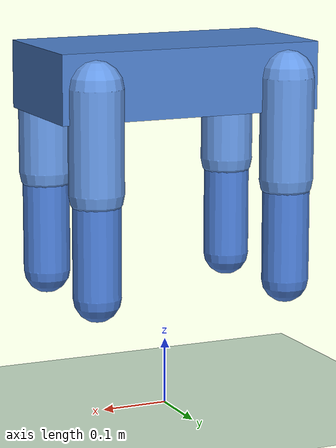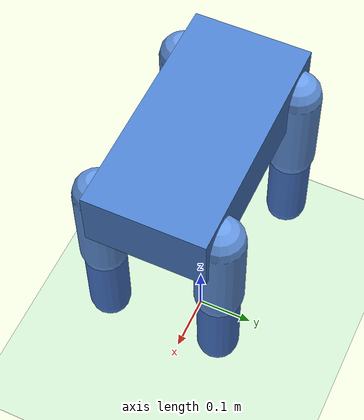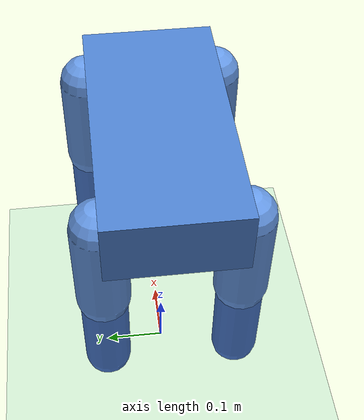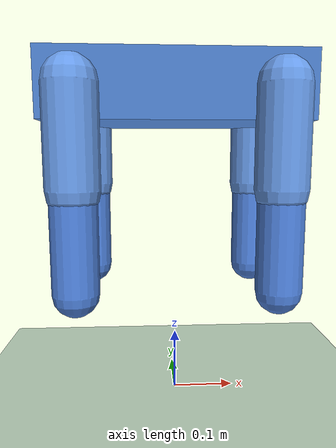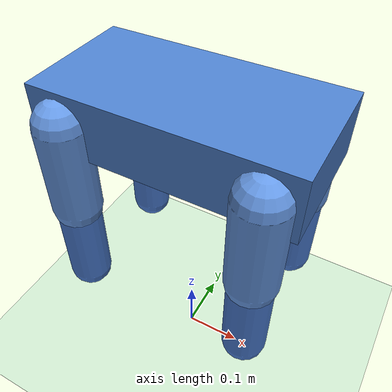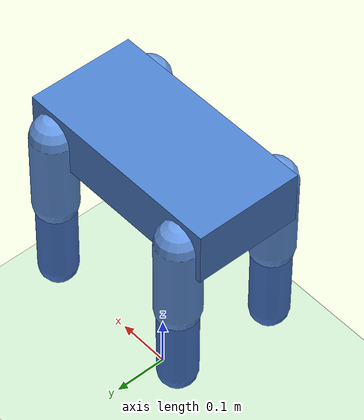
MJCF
<mujoco model="simple_quadruped">

  <!-- Derleyici ayarlari / Compiler settings -->
  <compiler angle="degree" coordinate="local" inertiafromgeom="true"/>
  <option integrator="RK4" timestep="0.01"/>

  <!-- Varsayilan eklem/geom ayarlari / Default joint/geom settings -->
  <default>
    <joint armature="1" damping="1" limited="true"/>
    <geom conaffinity="0" condim="3" density="5.0" friction="1.0 0.5 0.5"
          margin="0.01" rgba="0.2 0.6 0.8 1"/>
  </default>

  <!-- Gorseller / Visual assets -->
  <asset>
    <texture builtin="gradient" height="100" rgb1="0.6 0.8 1.0" rgb2="0.1 0.1 0.3"
             type="skybox" width="100"/>
    <texture builtin="checker" height="100" name="texplane"
             rgb1="0.1 0.2 0.3" rgb2="0.8 0.85 0.9" type="2d" width="100"/>
    <material name="MatPlane" reflectance="0.5" shininess="1"
              specular="1" texrepeat="60 60" texture="texplane"/>
  </asset>

  <worldbody>
    <!-- Isik ve zemin / Light and ground -->
    <light cutoff="100" diffuse="1 1 1" dir="0 0 -1.3"
           directional="true" pos="0 0 1.3" specular=".1 .1 .1"/>
    <geom conaffinity="1" condim="3" material="MatPlane" name="floor"
          pos="0 0 0" size="40 40 40" type="plane" rgba="0.8 0.9 0.8 1"/>

    <!-- Ana Govde / Main Torso Body                  -->
    <body name="torso" pos="0 0 0.5">
      <camera name="track" mode="trackcom" pos="0 -3 0.5" xyaxes="1 0 0 0 0 1"/>
      <joint name="root" type="free" armature="0" damping="0" limited="false"/>

      <!-- Dikdortgen govde / Rectangular torso -->
      <geom name="torso_geom" type="box" size="0.2 0.1 0.05"
            pos="0 0 0" rgba="0.3 0.5 0.8 1"/>

      <!-- ON SOL BACAK / FRONT LEFT LEG                -->
      <body name="front_left_hip" pos="0.15 0.1 0">
        <!-- Kalca eklemi (on-arka) / Hip joint (forward-backward) -->
        <joint name="fl_hip" type="hinge" axis="0 1 0"
               range="-30 30" pos="0 0 0"/>
        <geom name="fl_upper_leg" type="capsule"
              fromto="0 0 0 0 0 -0.15" size="0.04"
              rgba="0.4 0.6 0.9 1"/>

        <body name="front_left_knee" pos="0 0 -0.15">
          <!-- Diz eklemi / Knee joint -->
          <joint name="fl_knee" type="hinge" axis="0 1 0"
                 range="-60 0" pos="0 0 0"/>
          <geom name="fl_lower_leg" type="capsule"
                fromto="0 0 0 0 0 -0.15" size="0.035"
                rgba="0.3 0.5 0.85 1"/>
        </body>
      </body>

      <!-- ON SAG BACAK / FRONT RIGHT LEG               -->
      <body name="front_right_hip" pos="0.15 -0.1 0">
        <joint name="fr_hip" type="hinge" axis="0 1 0"
               range="-30 30" pos="0 0 0"/>
        <geom name="fr_upper_leg" type="capsule"
              fromto="0 0 0 0 0 -0.15" size="0.04"
              rgba="0.4 0.6 0.9 1"/>

        <body name="front_right_knee" pos="0 0 -0.15">
          <joint name="fr_knee" type="hinge" axis="0 1 0"
                 range="-60 0" pos="0 0 0"/>
          <geom name="fr_lower_leg" type="capsule"
                fromto="0 0 0 0 0 -0.15" size="0.035"
                rgba="0.3 0.5 0.85 1"/>
        </body>
      </body>

      <!-- ARKA SOL BACAK / BACK LEFT LEG               -->
      <body name="back_left_hip" pos="-0.15 0.1 0">
        <joint name="bl_hip" type="hinge" axis="0 1 0"
               range="-30 30" pos="0 0 0"/>
        <geom name="bl_upper_leg" type="capsule"
              fromto="0 0 0 0 0 -0.15" size="0.04"
              rgba="0.4 0.6 0.9 1"/>

        <body name="back_left_knee" pos="0 0 -0.15">
          <joint name="bl_knee" type="hinge" axis="0 1 0"
                 range="-60 0" pos="0 0 0"/>
          <geom name="bl_lower_leg" type="capsule"
                fromto="0 0 0 0 0 -0.15" size="0.035"
                rgba="0.3 0.5 0.85 1"/>
        </body>
      </body>

      <!-- ARKA SAG BACAK / BACK RIGHT LEG              -->
      <body name="back_right_hip" pos="-0.15 -0.1 0">
        <joint name="br_hip" type="hinge" axis="0 1 0"
               range="-30 30" pos="0 0 0"/>
        <geom name="br_upper_leg" type="capsule"
              fromto="0 0 0 0 0 -0.15" size="0.04"
              rgba="0.4 0.6 0.9 1"/>

        <body name="back_right_knee" pos="0 0 -0.15">
          <joint name="br_knee" type="hinge" axis="0 1 0"
                 range="-60 0" pos="0 0 0"/>
          <geom name="br_lower_leg" type="capsule"
                fromto="0 0 0 0 0 -0.15" size="0.035"
                rgba="0.3 0.5 0.85 1"/>
        </body>
      </body>
    </body>
  </worldbody>

  <!-- Motorlar / Actuators                         -->
  <!-- 8 motor: her bacakta 1 kalca + 1 diz         -->
  <!-- 8 motors: 1 hip + 1 knee per leg              -->
  <actuator>
    <!-- On Sol / Front Left -->
    <motor name="fl_hip_motor"  joint="fl_hip"  gear="150"
           ctrllimited="true" ctrlrange="-1.0 1.0"/>
    <motor name="fl_knee_motor" joint="fl_knee" gear="150"
           ctrllimited="true" ctrlrange="-1.0 1.0"/>
    <!-- On Sag / Front Right -->
    <motor name="fr_hip_motor"  joint="fr_hip"  gear="150"
           ctrllimited="true" ctrlrange="-1.0 1.0"/>
    <motor name="fr_knee_motor" joint="fr_knee" gear="150"
           ctrllimited="true" ctrlrange="-1.0 1.0"/>
    <!-- Arka Sol / Back Left -->
    <motor name="bl_hip_motor"  joint="bl_hip"  gear="150"
           ctrllimited="true" ctrlrange="-1.0 1.0"/>
    <motor name="bl_knee_motor" joint="bl_knee" gear="150"
           ctrllimited="true" ctrlrange="-1.0 1.0"/>
    <!-- Arka Sag / Back Right -->
    <motor name="br_hip_motor"  joint="br_hip"  gear="150"
           ctrllimited="true" ctrlrange="-1.0 1.0"/>
    <motor name="br_knee_motor" joint="br_knee" gear="150"
           ctrllimited="true" ctrlrange="-1.0 1.0"/>
  </actuator>
</mujoco>
